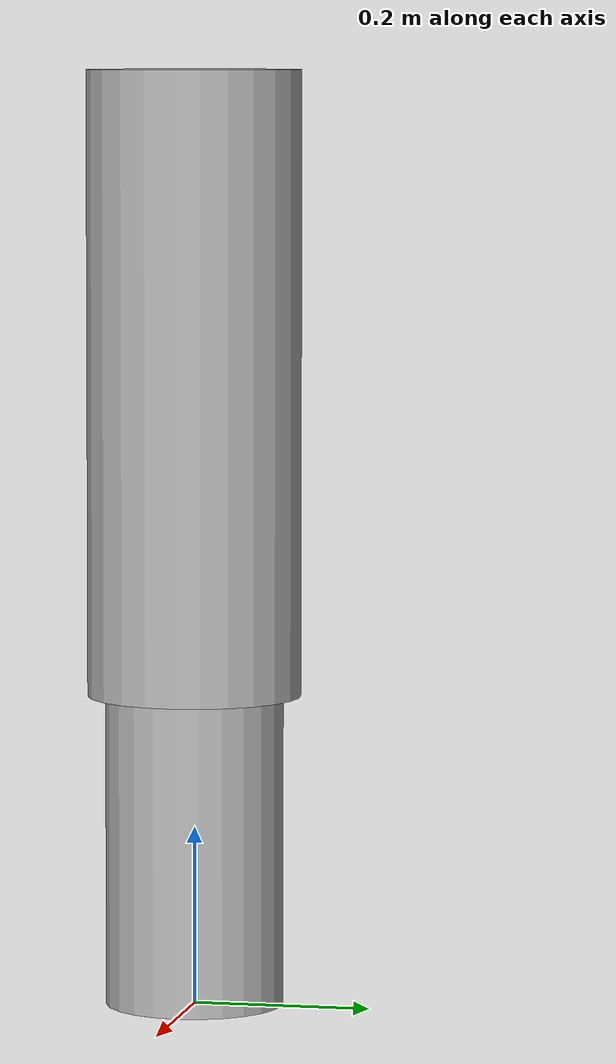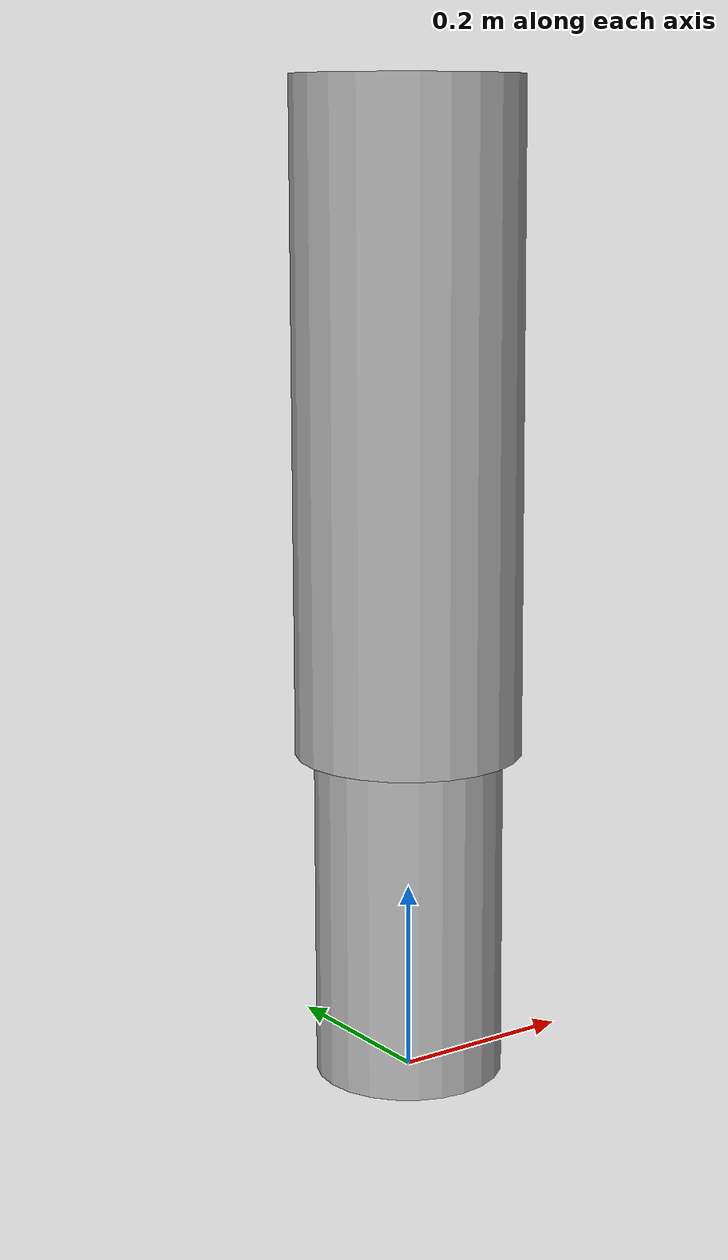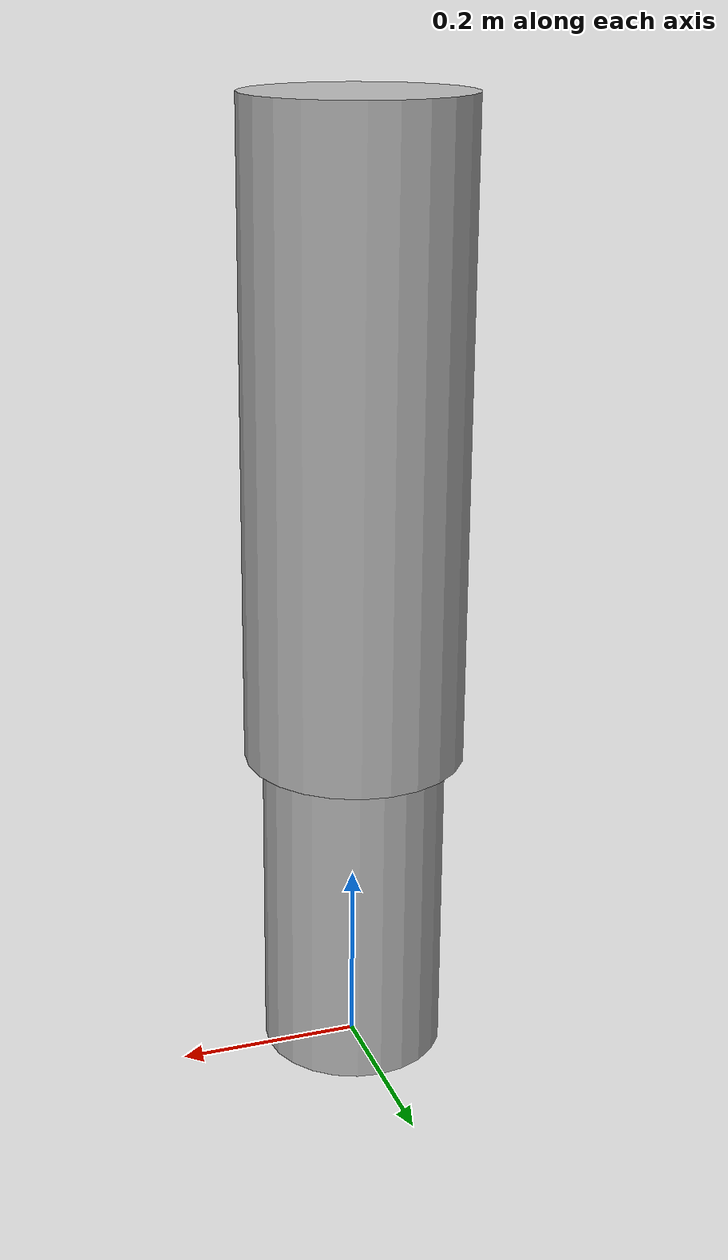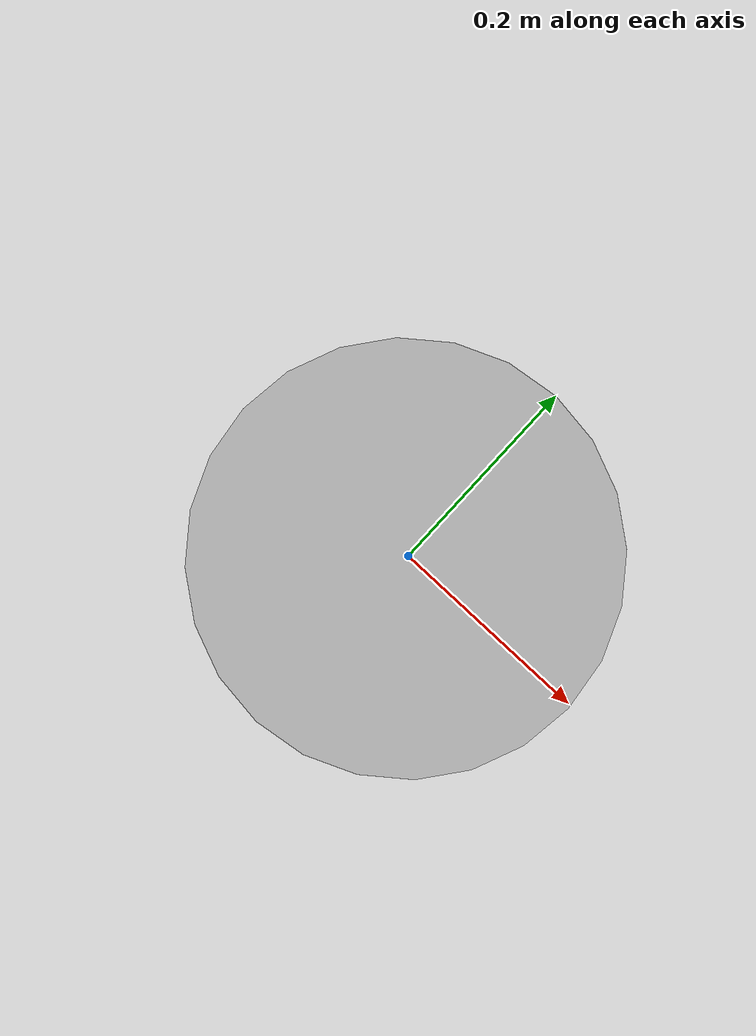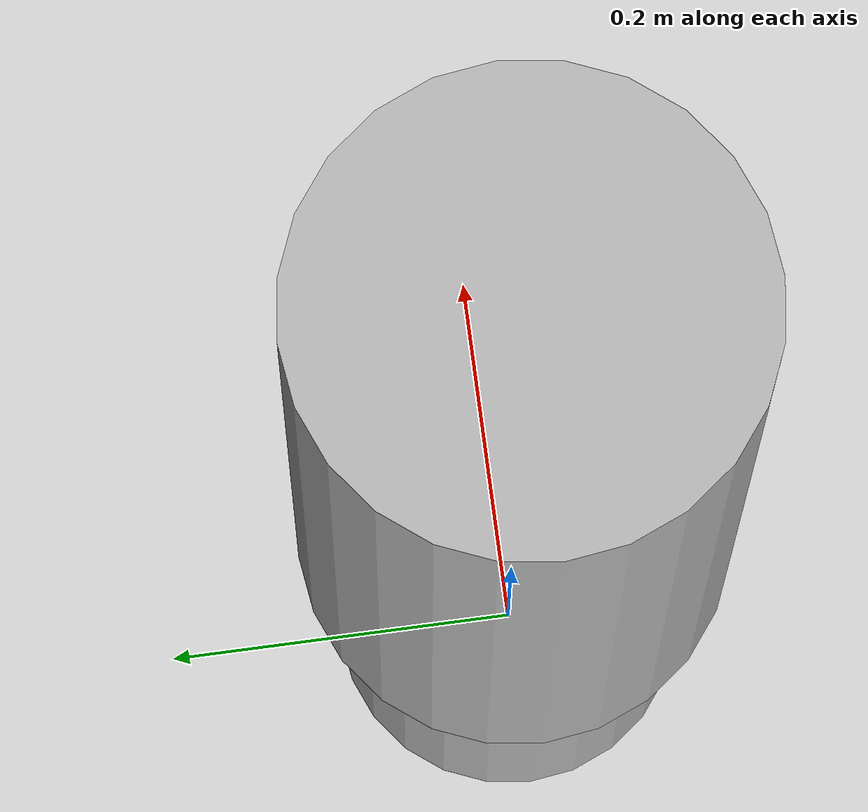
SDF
<?xml version='1.0'?>
<sdf version='1.6'>
  <model name='leg1'>
    <link name='r_calf'>
      <pose frame=''>0 0 0.2 0 0 0</pose>
      <inertial>
        <mass>.25</mass>
      </inertial>
      <gravity>1</gravity>
      <kinematic>0</kinematic>

      <self_collide>1</self_collide>
      <visual name='r_calf_geom_visual'>
        <pose frame=''>0 0 0 0 0 0</pose>
        <geometry>
          <cylinder>
            <radius>0.1</radius>
            <length>0.4 </length>
          </cylinder>
        </geometry>
      </visual>
      <collision name='r_calf_geom'>
        <pose frame=''>0 0 0 0 0 0</pose>
        <geometry>
          <cylinder>
            <radius>0.1</radius>
            <length>0.4</length>
          </cylinder>
        </geometry>
      </collision>
    </link>

    <link name='r_thigh_lift'>
      <pose frame=''>0 0 0.7 0 0 0</pose>
      <inertial>
        <mass>.54</mass>
      </inertial>
      <gravity>1</gravity>
      <kinematic>0</kinematic>

      <self_collide>1</self_collide>

      <visual name='r_thigh_lift_geom_visual'>
        <pose frame=''>0 0 0 0 -0 0</pose>
        <geometry>
          <cylinder>
            <radius>0.12</radius>
            <length>0.7</length>
          </cylinder>
        </geometry>
      </visual>
      <collision name='r_thigh_lift_geom'>
        <pose frame=''>0 0 0 0 0 0</pose>
        <geometry>
          <cylinder>
            <radius>0.12</radius>
            <length>0.7</length>
          </cylinder>
        </geometry>
      </collision>
    </link>

    <joint name='r_calf_joint' type='revolute'>
      <parent>r_thigh_lift</parent>
      <child>r_calf</child>
      <pose frame=''>0 0 0.2 0 0 0</pose>
      <axis>
        <xyz>0 1 0</xyz>
        <use_parent_model_frame>1</use_parent_model_frame>
        <limit>
          <lower>0</lower>
          <upper>0</upper>
        </limit>
        <dynamics>
        </dynamics>
      </axis>
    </joint>

    <static>0</static>
    <allow_auto_disable>1</allow_auto_disable>

  </model>
</sdf>
